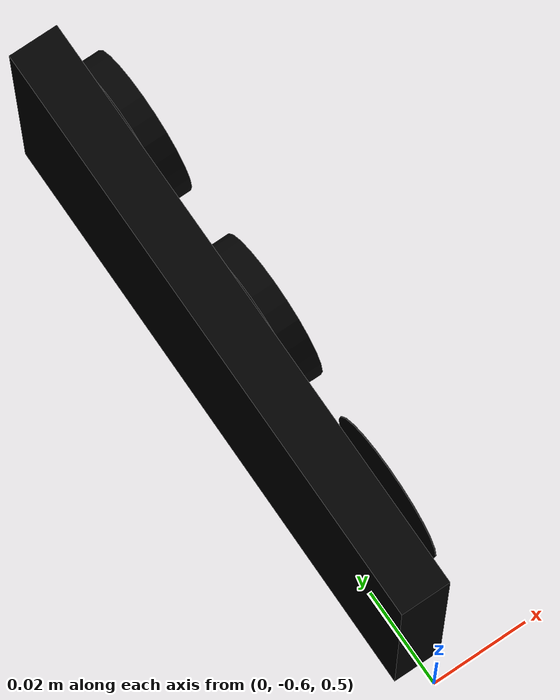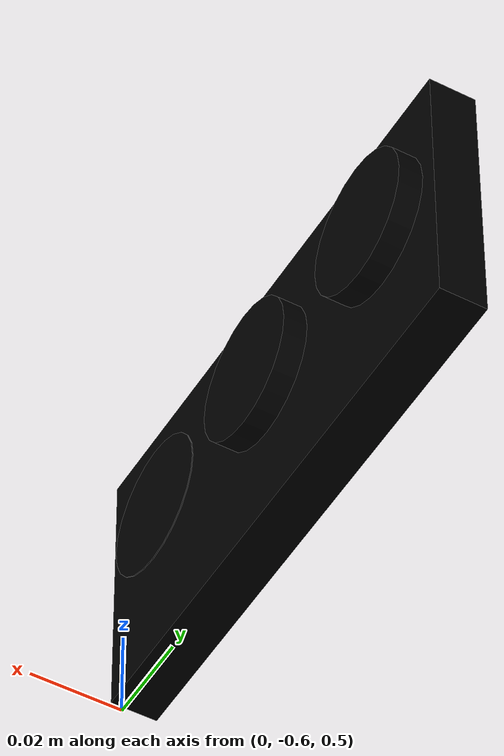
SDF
<?xml version="1.0"?>
<sdf version="1.7">
  <model name="gazebo_traffic_light">
    <static>false</static>

    <link name="light_fixture">
      <kinematic>1</kinematic>
      <gravity>false</gravity>
      <pose>0 0 0.525 1.57 0 0</pose>
      <visual name="visual">
        <pose>0 0 0.535 0 0 0</pose>
        <geometry>
          <box>
            <size>0.01 0.06 0.12</size>
          </box>
        </geometry>
        <material>
          <ambient>0 0 0 1</ambient>
          <diffuse>0 0 0 1</diffuse>
          <specular>0 0 0 1</specular>
        </material>
      </visual>
      <collision name="collision">
        <pose>0 0 0.535 0 0 0</pose>
        <geometry>
          <box>
            <size>0.01 0.06 0.12</size>
          </box>
        </geometry>
      </collision>
    </link>

    <link name="left_off">
      <gravity>false</gravity>
      <kinematic>1</kinematic>
      <pose>0 -0.57 0.525 0 1.5707 0</pose>

      <visual name="visual">
        <geometry>
          <cylinder>
            <radius>0.015</radius>
            <length>0.005</length>
          </cylinder>
        </geometry>
        <material>
          <ambient>0 0 0 1</ambient>
          <diffuse>0 0 0 1</diffuse>
          <specular>0 0 0 1</specular>
          <emissive>1 0 0 1</emissive>
        </material>
      </visual>
    </link>

    <link name="left_on">
      <gravity>false</gravity>
      <kinematic>1</kinematic>
      <pose>0.01 -0.57 0.525 0 1.5707 0</pose>

      <visual name="visual">
        <geometry>
          <cylinder>
            <radius>0.015</radius>
            <length>0.0002</length>
          </cylinder>
        </geometry>
        <material>
          <ambient>0 0 0 1</ambient>
          <diffuse>0 0 0 1</diffuse>
          <specular>0 0 0 1</specular>
          <emissive>0 1 0 1</emissive>
        </material>
      </visual>
    </link>

    <link name="middle_off">
      <gravity>false</gravity>
      <kinematic>1</kinematic>
      <pose>0.01 -0.53125 0.525 0 1.5707 0</pose>

      <visual name="visual">
        <geometry>
          <cylinder>
            <radius>0.015</radius>
            <length>0.005</length>
          </cylinder>
        </geometry>
        <material>
          <ambient>0 0 0 1</ambient>
          <diffuse>0 0 0 1</diffuse>
          <specular>0 0 0 1</specular>
          <emissive>1 0 0 1</emissive>
        </material>
      </visual>
    </link>

    <link name="middle_on">
      <gravity>false</gravity>
      <kinematic>1</kinematic>
      <pose>0 -0.53125 0.525 0 1.5707 0</pose>

      <visual name="visual">
        <geometry>
          <cylinder>
            <radius>0.015</radius>
            <length>0.0002</length>
          </cylinder>
        </geometry>
        <material>
          <ambient>0 0 0 1</ambient>
          <diffuse>0 0 0 1</diffuse>
          <specular>0 0 0 1</specular>
          <emissive>0 1 0 1</emissive>
        </material>
      </visual>
    </link>

    <link name="right_off">
      <gravity>false</gravity>
      <kinematic>1</kinematic>
      <pose>0.01 -0.49 0.525 0 1.5707 0</pose>

      <visual name="visual">
        <geometry>
          <cylinder>
            <radius>0.015</radius>
            <length>0.005</length>
          </cylinder>
        </geometry>
        <material>
          <ambient>0 0 0 1</ambient>
          <diffuse>0 0 0 1</diffuse>
          <specular>0 0 0 1</specular>
          <emissive>1 0 0 1</emissive>
        </material>
      </visual>
    </link>

    <link name="right_on">
      <gravity>false</gravity>
      <kinematic>1</kinematic>
      <pose>0 -0.49 0.525 0 1.5707 0</pose>

      <visual name="visual">
        <geometry>
          <cylinder>
            <radius>0.015</radius>
            <length>0.0002</length>
          </cylinder>
        </geometry>
        <material>
          <ambient>0 0 0 1</ambient>
          <diffuse>0 0 0 1</diffuse>
          <specular>0 0 0 1</specular>
          <emissive>0 1 0 1</emissive>
        </material>
      </visual>
    </link>
    <joint name="left_base" type="fixed" >
      <parent>light_fixture</parent>
      <child>left_off</child>
      <child>left_on</child>
    </joint>
    <joint name="middle_base" type="fixed" >
      <parent>light_fixture</parent>
      <child>middle_off</child>
      <child>middle_on</child>
    </joint>
    <joint name="right_base" type="fixed" >
      <parent>light_fixture</parent>
      <child>right_off</child>
      <child>right_on</child>
    </joint>
  </model>
</sdf>
